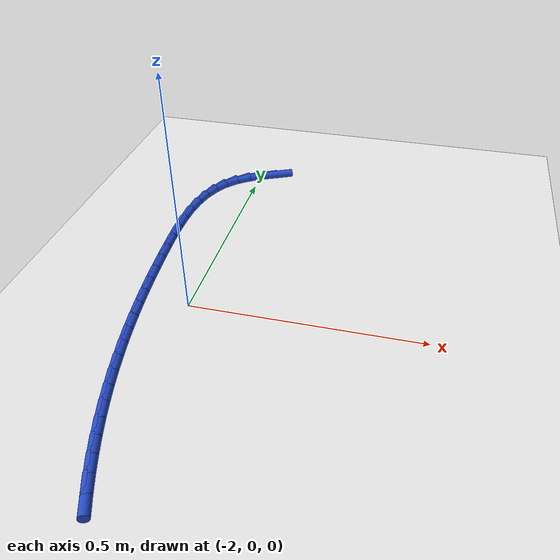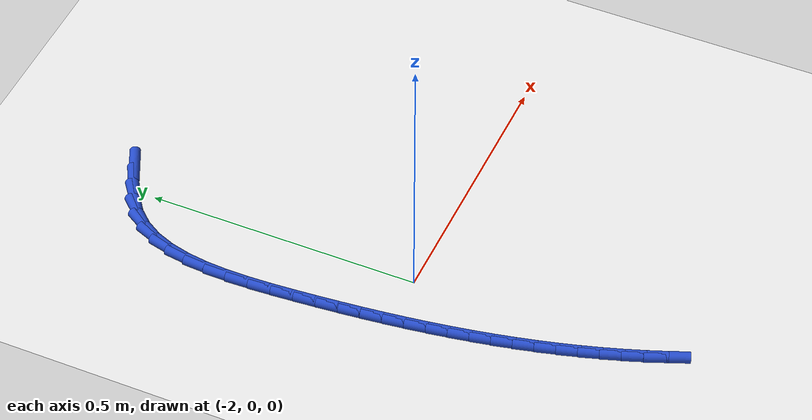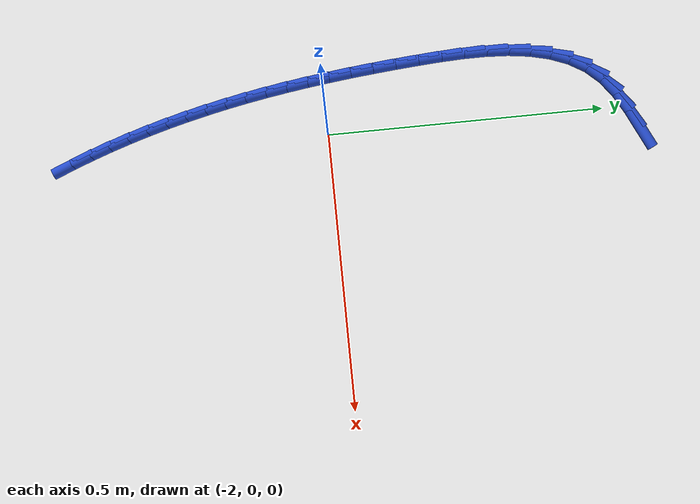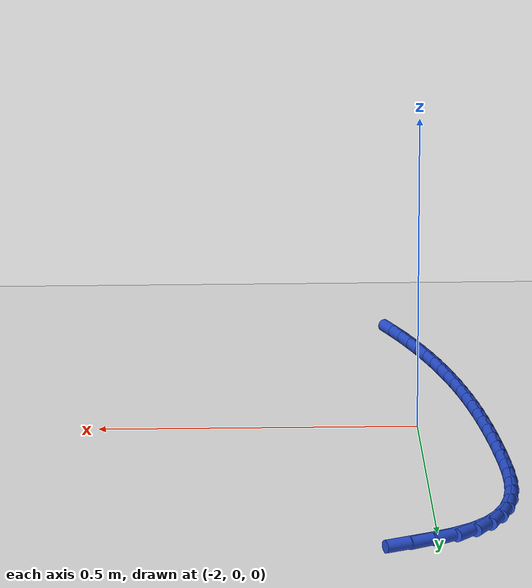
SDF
<sdf version="1.6">
 <world name="default">
  <model name="ground_plane">
   <static>1</static>
   <link name="link">
    <collision name="collision">
     <geometry><plane><normal>0 0 1</normal><size>100 100</size></plane></geometry>
     <surface><friction><ode><mu>100</mu><mu2>50</mu2></ode></friction></surface>
    </collision>
    <visual name="visual">
     <cast_shadows>0</cast_shadows>
     <geometry><plane><normal>0 0 1</normal><size>100 100</size></plane></geometry>
     <material>
      <script><uri>file://media/materials/scripts/gazebo.material</uri><name>Gazebo/WhiteGlow</name></script>
     </material>
    </visual>
   </link>
  </model>
  <model name="line">
   <link name="link_76">
    <pose>-1.9544920854530885 0.5634023214603715 0.01 0 1.57 0.4372422703397794</pose>
    <collision name="collision">
     <geometry><cylinder><radius>0.01</radius><length>0.08</length></cylinder></geometry>
    </collision>
    <visual name="visual">
     <material>
      <script><name>Gazebo/Blue</name><uri>file://media/materials/scripts/gazebo.material</uri></script>
     </material>
     <geometry><cylinder><radius>0.01</radius><length>0.08</length></cylinder></geometry>
    </visual>
   </link>
   <link name="link_77">
    <pose>-1.9902999839002673 0.5466651385982798 0.01 0 1.57 0.5118483165190343</pose>
    <collision name="collision">
     <geometry><cylinder><radius>0.01</radius><length>0.08</length></cylinder></geometry>
    </collision>
    <visual name="visual">
     <material>
      <script><name>Gazebo/Blue</name><uri>file://media/materials/scripts/gazebo.material</uri></script>
     </material>
     <geometry><cylinder><radius>0.01</radius><length>0.08</length></cylinder></geometry>
    </visual>
   </link>
   <link name="link_78">
    <pose>-2.023485615569633 0.5280218538776233 0.01 0 1.57 0.6425647303919684</pose>
    <collision name="collision">
     <geometry><cylinder><radius>0.01</radius><length>0.08</length></cylinder></geometry>
    </collision>
    <visual name="visual">
     <material>
      <script><name>Gazebo/Blue</name><uri>file://media/materials/scripts/gazebo.material</uri></script>
     </material>
     <geometry><cylinder><radius>0.01</radius><length>0.08</length></cylinder></geometry>
    </visual>
   </link>
   <link name="link_79">
    <pose>-2.052543747968105 0.5062707394540601 0.01 0 1.57 0.8333347192759247</pose>
    <collision name="collision">
     <geometry><cylinder><radius>0.01</radius><length>0.08</length></cylinder></geometry>
    </collision>
    <visual name="visual">
     <material>
      <script><name>Gazebo/Blue</name><uri>file://media/materials/scripts/gazebo.material</uri></script>
     </material>
     <geometry><cylinder><radius>0.01</radius><length>0.08</length></cylinder></geometry>
    </visual>
   </link>
   <link name="link_80">
    <pose>-2.076110308696768 0.4803291069383162 0.01 0 1.57 1.0318248917790673</pose>
    <collision name="collision">
     <geometry><cylinder><radius>0.01</radius><length>0.08</length></cylinder></geometry>
    </collision>
    <visual name="visual">
     <material>
      <script><name>Gazebo/Blue</name><uri>file://media/materials/scripts/gazebo.material</uri></script>
     </material>
     <geometry><cylinder><radius>0.01</radius><length>0.08</length></cylinder></geometry>
    </visual>
   </link>
   <link name="link_81">
    <pose>-2.0941218597656834 0.45021108508482 0.01 0 1.57 1.2000744808659423</pose>
    <collision name="collision">
     <geometry><cylinder><radius>0.01</radius><length>0.08</length></cylinder></geometry>
    </collision>
    <visual name="visual">
     <material>
      <script><name>Gazebo/Blue</name><uri>file://media/materials/scripts/gazebo.material</uri></script>
     </material>
     <geometry><cylinder><radius>0.01</radius><length>0.08</length></cylinder></geometry>
    </visual>
   </link>
   <link name="link_82">
    <pose>-2.1072164564646627 0.41652236769511264 0.01 0 1.57 1.3345548051729668</pose>
    <collision name="collision">
     <geometry><cylinder><radius>0.01</radius><length>0.08</length></cylinder></geometry>
    </collision>
    <visual name="visual">
     <material>
      <script><name>Gazebo/Blue</name><uri>file://media/materials/scripts/gazebo.material</uri></script>
     </material>
     <geometry><cylinder><radius>0.01</radius><length>0.08</length></cylinder></geometry>
    </visual>
   </link>
   <link name="link_83">
    <pose>-2.116038971039822 0.379874397268825 0.01 0 1.57 1.438348924548907</pose>
    <collision name="collision">
     <geometry><cylinder><radius>0.01</radius><length>0.08</length></cylinder></geometry>
    </collision>
    <visual name="visual">
     <material>
      <script><name>Gazebo/Blue</name><uri>file://media/materials/scripts/gazebo.material</uri></script>
     </material>
     <geometry><cylinder><radius>0.01</radius><length>0.08</length></cylinder></geometry>
    </visual>
   </link>
   <link name="link_84">
    <pose>-2.121234275737278 0.3408786163055886 0.01 0 1.57 1.5165199477027662</pose>
    <collision name="collision">
     <geometry><cylinder><radius>0.01</radius><length>0.08</length></cylinder></geometry>
    </collision>
    <visual name="visual">
     <material>
      <script><name>Gazebo/Blue</name><uri>file://media/materials/scripts/gazebo.material</uri></script>
     </material>
     <geometry><cylinder><radius>0.01</radius><length>0.08</length></cylinder></geometry>
    </visual>
   </link>
   <link name="link_85">
    <pose>-2.123447242803147 0.30014646730503375 0.01 0 1.57 -1.5678219681270447</pose>
    <collision name="collision">
     <geometry><cylinder><radius>0.01</radius><length>0.08</length></cylinder></geometry>
    </collision>
    <visual name="visual">
     <material>
      <script><name>Gazebo/Blue</name><uri>file://media/materials/scripts/gazebo.material</uri></script>
     </material>
     <geometry><cylinder><radius>0.01</radius><length>0.08</length></cylinder></geometry>
    </visual>
   </link>
   <link name="link_86">
    <pose>-2.1233227444835454 0.2582893927667922 0.01 0 1.57 -1.5279368790576755</pose>
    <collision name="collision">
     <geometry><cylinder><radius>0.01</radius><length>0.08</length></cylinder></geometry>
    </collision>
    <visual name="visual">
     <material>
      <script><name>Gazebo/Blue</name><uri>file://media/materials/scripts/gazebo.material</uri></script>
     </material>
     <geometry><cylinder><radius>0.01</radius><length>0.08</length></cylinder></geometry>
    </visual>
   </link>
   <link name="link_87">
    <pose>-2.1215056530245886 0.21591883519049465 0.01 0 1.57 -1.5031298307626513</pose>
    <collision name="collision">
     <geometry><cylinder><radius>0.01</radius><length>0.08</length></cylinder></geometry>
    </collision>
    <visual name="visual">
     <material>
      <script><name>Gazebo/Blue</name><uri>file://media/materials/scripts/gazebo.material</uri></script>
     </material>
     <geometry><cylinder><radius>0.01</radius><length>0.08</length></cylinder></geometry>
    </visual>
   </link>
   <link name="link_88">
    <pose>-2.118640840672393 0.17364623707577143 0.01 0 1.57 -1.4905169318727285</pose>
    <collision name="collision">
     <geometry><cylinder><radius>0.01</radius><length>0.08</length></cylinder></geometry>
    </collision>
    <visual name="visual">
     <material>
      <script><name>Gazebo/Blue</name><uri>file://media/materials/scripts/gazebo.material</uri></script>
     </material>
     <geometry><cylinder><radius>0.01</radius><length>0.08</length></cylinder></geometry>
    </visual>
   </link>
   <link name="link_89">
    <pose>-2.1152906053585205 0.13200373285633002 0.01 0 1.57 -1.4801327597894107</pose>
    <collision name="collision">
     <geometry><cylinder><radius>0.01</radius><length>0.08</length></cylinder></geometry>
    </collision>
    <visual name="visual">
     <material>
      <script><name>Gazebo/Blue</name><uri>file://media/materials/scripts/gazebo.material</uri></script>
     </material>
     <geometry><cylinder><radius>0.01</radius><length>0.08</length></cylinder></geometry>
    </visual>
   </link>
   <link name="link_90">
    <pose>-2.1115715099636483 0.0910953530816283 0.01 0 1.57 -1.4686732699984912</pose>
    <collision name="collision">
     <geometry><cylinder><radius>0.01</radius><length>0.08</length></cylinder></geometry>
    </collision>
    <visual name="visual">
     <material>
      <script><name>Gazebo/Blue</name><uri>file://media/materials/scripts/gazebo.material</uri></script>
     </material>
     <geometry><cylinder><radius>0.01</radius><length>0.08</length></cylinder></geometry>
    </visual>
   </link>
   <link name="link_91">
    <pose>-2.1074503942404084 0.050881327510604084 0.01 0 1.57 -1.4561231904886032</pose>
    <collision name="collision">
     <geometry><cylinder><radius>0.01</radius><length>0.08</length></cylinder></geometry>
    </collision>
    <visual name="visual">
     <material>
      <script><name>Gazebo/Blue</name><uri>file://media/materials/scripts/gazebo.material</uri></script>
     </material>
     <geometry><cylinder><radius>0.01</radius><length>0.08</length></cylinder></geometry>
    </visual>
   </link>
   <link name="link_92">
    <pose>-2.102893987122445 0.011321779466686487 0.01 0 1.57 -1.4424777690251476</pose>
    <collision name="collision">
     <geometry><cylinder><radius>0.01</radius><length>0.08</length></cylinder></geometry>
    </collision>
    <visual name="visual">
     <material>
      <script><name>Gazebo/Blue</name><uri>file://media/materials/scripts/gazebo.material</uri></script>
     </material>
     <geometry><cylinder><radius>0.01</radius><length>0.08</length></cylinder></geometry>
    </visual>
   </link>
   <link name="link_93">
    <pose>-2.0978690175434087 -0.02762316772669296 0.01 0 1.57 -1.4277413833902057</pose>
    <collision name="collision">
     <geometry><cylinder><radius>0.01</radius><length>0.08</length></cylinder></geometry>
    </collision>
    <visual name="visual">
     <material>
      <script><name>Gazebo/Blue</name><uri>file://media/materials/scripts/gazebo.material</uri></script>
     </material>
     <geometry><cylinder><radius>0.01</radius><length>0.08</length></cylinder></geometry>
    </visual>
   </link>
   <link name="link_94">
    <pose>-2.092342214436947 -0.06599339074610522 0.01 0 1.57 -1.411928526097391</pose>
    <collision name="collision">
     <geometry><cylinder><radius>0.01</radius><length>0.08</length></cylinder></geometry>
    </collision>
    <visual name="visual">
     <material>
      <script><name>Gazebo/Blue</name><uri>file://media/materials/scripts/gazebo.material</uri></script>
     </material>
     <geometry><cylinder><radius>0.01</radius><length>0.08</length></cylinder></geometry>
    </visual>
   </link>
   <link name="link_95">
    <pose>-2.0862803067367057 -0.10382876626812043 0.01 0 1.57 -1.3950646710013601</pose>
    <collision name="collision">
     <geometry><cylinder><radius>0.01</radius><length>0.08</length></cylinder></geometry>
    </collision>
    <visual name="visual">
     <material>
      <script><name>Gazebo/Blue</name><uri>file://media/materials/scripts/gazebo.material</uri></script>
     </material>
     <geometry><cylinder><radius>0.01</radius><length>0.08</length></cylinder></geometry>
    </visual>
   </link>
   <link name="link_96">
    <pose>-2.0796500233763346 -0.14116917096930862 0.01 0 1.57 -1.3771869633307576</pose>
    <collision name="collision">
     <geometry><cylinder><radius>0.01</radius><length>0.08</length></cylinder></geometry>
    </collision>
    <visual name="visual">
     <material>
      <script><name>Gazebo/Blue</name><uri>file://media/materials/scripts/gazebo.material</uri></script>
     </material>
     <geometry><cylinder><radius>0.01</radius><length>0.08</length></cylinder></geometry>
    </visual>
   </link>
   <link name="link_97">
    <pose>-2.072418093289481 -0.17805448152623993 0.01 0 1.57 -1.3583446722329096</pose>
    <collision name="collision">
     <geometry><cylinder><radius>0.01</radius><length>0.08</length></cylinder></geometry>
    </collision>
    <visual name="visual">
     <material>
      <script><name>Gazebo/Blue</name><uri>file://media/materials/scripts/gazebo.material</uri></script>
     </material>
     <geometry><cylinder><radius>0.01</radius><length>0.08</length></cylinder></geometry>
    </visual>
   </link>
   <link name="link_98">
    <pose>-2.064551245409792 -0.2145245746154852 0.01 0 1.57 -1.3385993469158877</pose>
    <collision name="collision">
     <geometry><cylinder><radius>0.01</radius><length>0.08</length></cylinder></geometry>
    </collision>
    <visual name="visual">
     <material>
      <script><name>Gazebo/Blue</name><uri>file://media/materials/scripts/gazebo.material</uri></script>
     </material>
     <geometry><cylinder><radius>0.01</radius><length>0.08</length></cylinder></geometry>
    </visual>
   </link>
   <link name="link_99">
    <pose>-2.0560162086709157 -0.2506193269136131 0.01 0 1.57 -1.3180246249160164</pose>
    <collision name="collision">
     <geometry><cylinder><radius>0.01</radius><length>0.08</length></cylinder></geometry>
    </collision>
    <visual name="visual">
     <material>
      <script><name>Gazebo/Blue</name><uri>file://media/materials/scripts/gazebo.material</uri></script>
     </material>
     <geometry><cylinder><radius>0.01</radius><length>0.08</length></cylinder></geometry>
    </visual>
   </link>
   <link name="link_100">
    <pose>-2.0467797120065003 -0.2863786150971946 0.01 0 1.57 -1.2967056544474866</pose>
    <collision name="collision">
     <geometry><cylinder><radius>0.01</radius><length>0.08</length></cylinder></geometry>
    </collision>
    <visual name="visual">
     <material>
      <script><name>Gazebo/Blue</name><uri>file://media/materials/scripts/gazebo.material</uri></script>
     </material>
     <geometry><cylinder><radius>0.01</radius><length>0.08</length></cylinder></geometry>
    </visual>
   </link>
   <link name="link_101">
    <pose>-2.0368084843501935 -0.32184231584279954 0.01 0 1.57 -1.2747381120550285</pose>
    <collision name="collision">
     <geometry><cylinder><radius>0.01</radius><length>0.08</length></cylinder></geometry>
    </collision>
    <visual name="visual">
     <material>
      <script><name>Gazebo/Blue</name><uri>file://media/materials/scripts/gazebo.material</uri></script>
     </material>
     <geometry><cylinder><radius>0.01</radius><length>0.08</length></cylinder></geometry>
    </visual>
   </link>
   <link name="link_102">
    <pose>-2.026069254635642 -0.35705030582699815 0.01 0 1.57 -1.2522268208756502</pose>
    <collision name="collision">
     <geometry><cylinder><radius>0.01</radius><length>0.08</length></cylinder></geometry>
    </collision>
    <visual name="visual">
     <material>
      <script><name>Gazebo/Blue</name><uri>file://media/materials/scripts/gazebo.material</uri></script>
     </material>
     <geometry><cylinder><radius>0.01</radius><length>0.08</length></cylinder></geometry>
    </visual>
   </link>
   <link name="link_103">
    <pose>-2.0145287517964947 -0.39204246172636137 0.01 0 1.57 -1.2292840018070728</pose>
    <collision name="collision">
     <geometry><cylinder><radius>0.01</radius><length>0.08</length></cylinder></geometry>
    </collision>
    <visual name="visual">
     <material>
      <script><name>Gazebo/Blue</name><uri>file://media/materials/scripts/gazebo.material</uri></script>
     </material>
     <geometry><cylinder><radius>0.01</radius><length>0.08</length></cylinder></geometry>
    </visual>
   </link>
   <link name="link_104">
    <pose>-2.0021537047663993 -0.42685866021745766 0.01 0 1.57 -1.2060272171136366</pose>
    <collision name="collision">
     <geometry><cylinder><radius>0.01</radius><length>0.08</length></cylinder></geometry>
    </collision>
    <visual name="visual">
     <material>
      <script><name>Gazebo/Blue</name><uri>file://media/materials/scripts/gazebo.material</uri></script>
     </material>
     <geometry><cylinder><radius>0.01</radius><length>0.08</length></cylinder></geometry>
    </visual>
   </link>
   <link name="link_105">
    <pose>-1.9889108424790032 -0.46153877797685816 0.01 0 1.57 -1.1825770903843775</pose>
    <collision name="collision">
     <geometry><cylinder><radius>0.01</radius><length>0.08</length></cylinder></geometry>
    </collision>
    <visual name="visual">
     <material>
      <script><name>Gazebo/Blue</name><uri>file://media/materials/scripts/gazebo.material</uri></script>
     </material>
     <geometry><cylinder><radius>0.01</radius><length>0.08</length></cylinder></geometry>
    </visual>
   </link>
  </model>
 </world>
</sdf>
